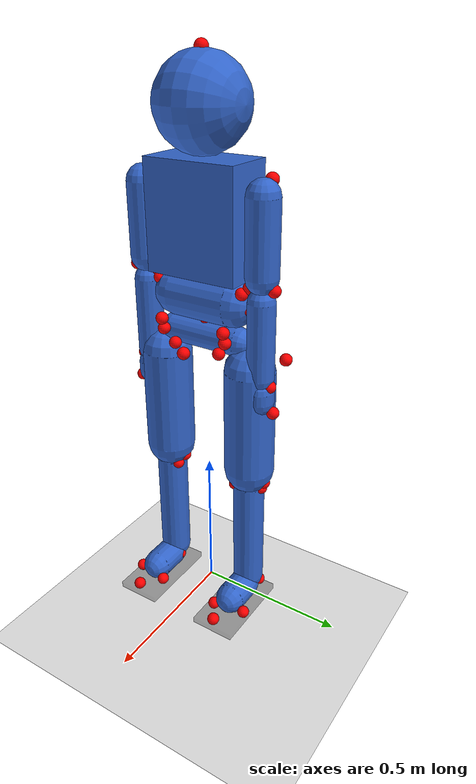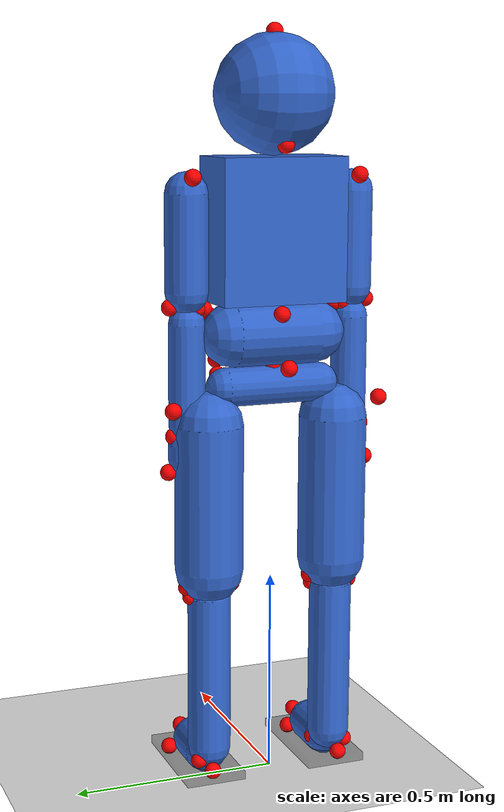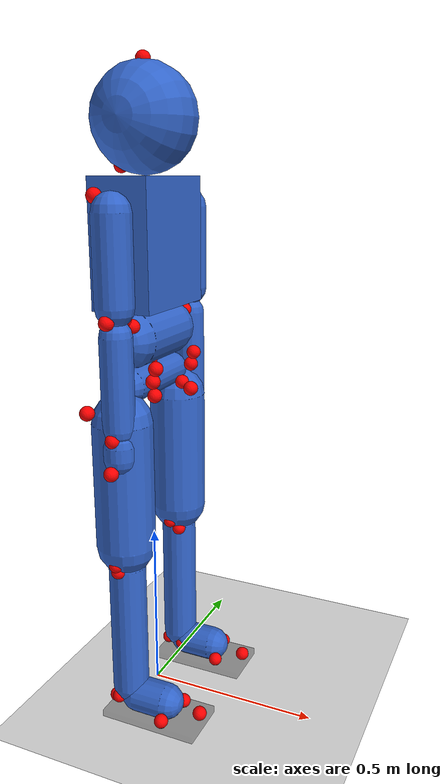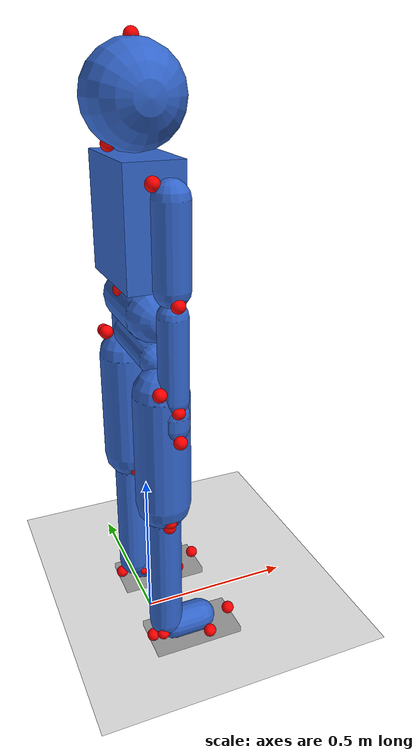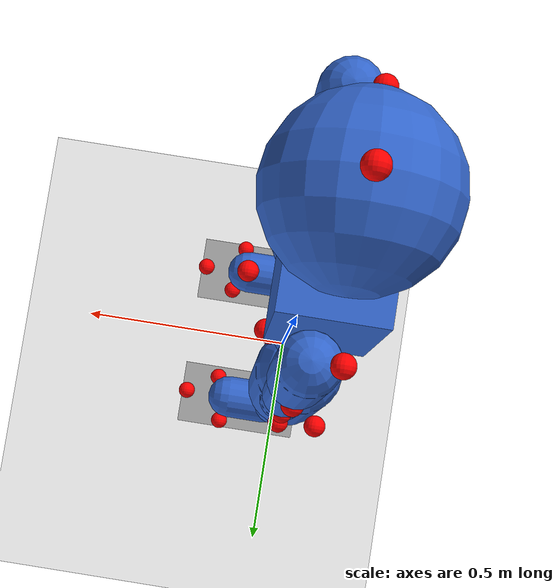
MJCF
<?xml version='1.0' encoding='utf-8'?>
<mujoco model="C:\Users\aleks\Desktop\Aleksie kerefeke\master\RS projekat - RL politika ucenja joystick\mujoco-bipedal-joystick-walker\generated_models\human_male_180cm_75kg_base">
  <compiler angle="degree" inertiafromgeom="false" />
  <visual>
    <map force="0.1" zfar="30" />
    <rgba haze="0.15 0.25 0.35 1" />
    <global offwidth="2560" offheight="1440" elevation="-20" azimuth="120" />
  </visual>
  <contact>
    <exclude body1="thorax" body2="head" />
    <exclude body1="thorax" body2="abdomen" />
    <exclude body1="abdomen" body2="pelvis" />
    <exclude body1="pelvis" body2="left_thigh" />
    <exclude body1="pelvis" body2="right_thigh" />
    <exclude body1="left_thigh" body2="left_shank" />
    <exclude body1="right_thigh" body2="right_shank" />
    <exclude body1="left_shank" body2="left_foot" />
    <exclude body1="right_shank" body2="right_foot" />
    <exclude body1="thorax" body2="left_upper_arm" />
    <exclude body1="thorax" body2="right_upper_arm" />
    <exclude body1="left_upper_arm" body2="left_forearm" />
    <exclude body1="right_upper_arm" body2="right_forearm" />
    <exclude body1="left_forearm" body2="left_hand" />
    <exclude body1="right_forearm" body2="right_hand" />
  </contact>
  <worldbody>
    <light diffuse=".8 .8 .8" pos="0 0 3" dir="0 0 -1" />
    <body name="thorax" pos="0 0 1.5188135593220338" euler="90 0 0">
      <joint type="free" pos="0 0 0" />
      <geom type="box" size="0.08491525423728814 0.16983050847457629 0.15305084745762712" pos="0 -0.16983050847457629 0" euler="0 0 0" rgba="0.2 0.4 0.8 1.0" contype="0" conaffinity="0" />
      <inertial mass="22.8" pos="0.0 -0.1885118644067797 -0.0013586440677966103" fullinertia="0.4640073275127837 0.28645350320942264 0.34090334266245337 -0.031828167023269176 0.00026304270267164614 0.002367384324044815" />
      <body name="head" pos="0 0 0">
        <joint name="head_x" type="hinge" axis="1 0 0" pos="0 0 0" range="-45.0 45.0" damping="2.0" armature="0.003" frictionloss="0.3" stiffness="12.0" springref="0" />
        <joint name="head_y" type="hinge" axis="0 1 0" pos="0 0 0" range="-80 80" damping="2.0" armature="0.003" frictionloss="0.3" stiffness="12.0" springref="0" />
        <joint name="head_z" type="hinge" axis="0 0 1" pos="0 0 0" range="-60 75.0" damping="2.0" armature="0.003" frictionloss="0.3" stiffness="12.0" springref="0" />
        <geom type="sphere" size="0.14135593220338985" pos="0 0.14135593220338985 0" euler="0 0 0" rgba="0.2 0.4 0.8 1.0" contype="0" conaffinity="0" />
        <inertial mass="5.025" pos="0.005654237288135594 0.15096813559322037 0.0002827118644067797" fullinertia="0.03148764628095377 0.01771180103303649 0.036146532720482634 -0.0019679778925596105 -0.0001606512565354784 0.0003614653272048263" />
        <site name="head_vertex" pos="0.0 0.2816949152542373 0.0" size="0.02" rgba="1 0 0 1" />
        <site name="sellion" pos="0.10677966101694915 0.17593220338983048 0.0" size="0.02" rgba="1 0 0 1" />
        <site name="occiput" pos="-0.07423728813559322 0.1016949152542373 0.0" size="0.02" rgba="1 0 0 1" />
        <site name="centre_of_mass_head" pos="-0.006101694915254237 0.15152542372881356 0.0" size="0.02" rgba="1 0 0 1" />
      </body>
      <body name="abdomen" pos="0 -0.33966101694915257 0">
        <joint name="abdomen_x" type="hinge" axis="1 0 0" pos="0 0 0" range="-0.001 0.001" limited="true" damping="80.0" armature="0.05" frictionloss="10.0" stiffness="5000.0" springref="0" />
        <joint name="abdomen_y" type="hinge" axis="0 1 0" pos="0 0 0" range="-0.001 0.001" limited="true" damping="80.0" armature="0.05" frictionloss="10.0" stiffness="5000.0" springref="0" />
        <joint name="abdomen_z" type="hinge" axis="0 0 1" pos="0 0 0" range="-0.001 0.001" limited="true" damping="80.0" armature="0.05" frictionloss="10.0" stiffness="5000.0" springref="0" />
        <geom type="capsule" size="0.07677966101694915 0.10194915254237288" pos="0 -0.07677966101694915 0" euler="0 0 0" rgba="0.2 0.4 0.8 1.0" contype="0" conaffinity="0" />
        <inertial mass="2.175" pos="0.027026440677966102 -0.055434915254237285 -0.005067457627118644" fullinertia="0.014955438560183852 0.022340840318299336 0.00820600195346165 0.000620578897730537 -0.00018463504395288706 -0.00012821878052283827" />
        <body name="pelvis" pos="0 -0.1535593220338983 0">
          <joint name="pelvis_x" type="hinge" axis="1 0 0" pos="0 0 0" range="-0.001 0.001" limited="true" damping="80.0" armature="0.05" frictionloss="10.0" stiffness="5000.0" springref="0" />
          <joint name="pelvis_y" type="hinge" axis="0 1 0" pos="0 0 0" range="-0.001 0.001" limited="true" damping="80.0" armature="0.05" frictionloss="10.0" stiffness="5000.0" springref="0" />
          <joint name="pelvis_z" type="hinge" axis="0 0 1" pos="0 0 0" range="-0.001 0.001" limited="true" damping="80.0" armature="0.05" frictionloss="10.0" stiffness="5000.0" springref="0" />
          <geom type="capsule" size="0.047288135593220336 0.11923728813559321" pos="0 -0.047288135593220336 0" euler="0 0 0" rgba="0.2 0.4 0.8 1.0" contype="0" conaffinity="0" />
          <inertial mass="10.649999999999999" pos="-0.00018915254237288136 -0.026670508474576266 -0.0005674576271186441" fullinertia="0.09910928108704392 0.10703497523010629 0.08779230435392127 -0.005953796681987933 -0.0013717547555300198 -0.0006096687802355644" />
          <body name="left_thigh" pos="0 -0.0945763 -0.161012">
            <joint name="left_hip_x" type="hinge" axis="1 0 0" pos="0 0 0" range="-20.0 40.0" damping="4.0" armature="0.01" frictionloss="0.3" />
            <joint name="left_hip_y" type="hinge" axis="0 1 0" pos="0 0 0" range="-40 50" damping="4.0" armature="0.01" frictionloss="0.3" />
            <joint name="left_hip_z" type="hinge" axis="0 0 1" pos="0 0 0" range="-30 100.0" damping="4.0" armature="0.01" frictionloss="0.3" />
            <geom type="capsule" size="0.08288135593220339 0.17822033898305084" pos="0 -0.21966101694915252 0" euler="-90 0 0" rgba="0.2 0.4 0.8 1.0" contype="0" conaffinity="0" />
            <inertial mass="9.225000000000001" pos="-0.018012203389830506 -0.18846915254237287 -0.014497627118644068" fullinertia="0.1497367290043091 0.040060361505314564 0.16024144602125825 0.00872425650560184 0.0007121842045389257 0.00872425650560184" />
            <body name="left_shank" pos="0 -0.43932203389830504 0">
              <joint name="left_knee_z" type="hinge" axis="0 0 1" pos="0 0 0" range="-150 0.0" damping="5.0" armature="0.01" frictionloss="0.8" />
              <geom type="capsule" size="0.052372881355932197 0.19398305084745762" pos="0 -0.22016949152542373 0" euler="-90 0 0" rgba="0.2 0.4 0.8 1.0" contype="0" conaffinity="0" />
              <inertial mass="3.6" pos="-0.021136271186440677 -0.18053898305084745 -0.0030823728813559317" fullinertia="0.054725890059178404 0.006980343119793164 0.054725890059178404 -0.001116854899166906 0.0002792137247917265 -0.001116854899166906" />
              <body name="left_foot" pos="0 -0.44033898305084745 0">
                <joint name="left_ankle_y" type="hinge" axis="0 1 0" pos="0 0 0" range="-30 30" damping="8.0" armature="0.01" frictionloss="1.0" />
                <joint name="left_ankle_z" type="hinge" axis="0 0 1" pos="0 0 0" range="-20 30.0" damping="8.0" armature="0.01" frictionloss="1.0" />
                <geom type="capsule" size="0.05135593220338983 0.04500000000000001" pos="0.07067796610169493 0 0" euler="0 90 0" rgba="0.2 0.4 0.8 1.0" solref="0.02 1" solimp="0.85 0.95 0.005" contype="0" conaffinity="0" condim="3" />
                <inertial mass="0.9" pos="0.0709606779661017 -0.028129830508474576 -0.004806101694915256" fullinertia="0.000870394121229532 0.004317802241884517 0.004143363750646367 0.000519718803792014 0.000217598530307383 -0.0" />
                <site name="calcaneous_left" pos="-0.04677966101694915 -0.02135593220338983 -0.00711864406779661" size="0.02" rgba="1 0 0 1" />
                <site name="first_metatarsal_head_left" pos="0.14847457627118643 -0.02135593220338983 0.04779661016949152" size="0.02" rgba="1 0 0 1" />
                <site name="fifth_metatarsal_head_left" pos="0.13016949152542373 -0.02135593220338983 -0.06101694915254237" size="0.02" rgba="1 0 0 1" />
                <site name="second_toe_tip_left" pos="0.22271186440677965 -0.009152542372881356 0.001016949152542373" size="0.02" rgba="1 0 0 1" />
                <site name="centre_of_mass_foot_left" pos="0.04576271186440677 -0.03661016949152542 -0.006101694915254237" size="0.02" rgba="1 0 0 1" />
                <site name="metatarsal_midpoint_left" pos="0.10576271186440676 0.0 0.0" size="0.02" rgba="1 0 0 1" />
                <geom name="left_foot_sole" type="box" pos="0.09 -0.045 0" size="0.145 0.012 0.075" rgba="0.1 0.1 0.1 0.35" friction="1.0 0.01 0.001" solref="0.02 1" solimp="0.85 0.95 0.005" contype="1" conaffinity="1" condim="3" />
              </body>
              <site name="tibiale_head_left" pos="0.02135593220338983 -0.027457627118644065 0.04271186440677966" size="0.02" rgba="1 0 0 1" />
              <site name="fibula_head_left" pos="0.0 -0.023389830508474575 -0.04779661016949152" size="0.02" rgba="1 0 0 1" />
              <site name="sphyrion_left" pos="0.02135593220338983 -0.4413559322033898 0.0335593220338983" size="0.02" rgba="1 0 0 1" />
              <site name="lateral_malleolus_left" pos="-0.02135593220338983 -0.44033898305084745 -0.0335593220338983" size="0.02" rgba="1 0 0 1" />
              <site name="centre_of_mass_shank_left" pos="-0.02135593220338983 -0.18101694915254235 -0.0030508474576271187" size="0.02" rgba="1 0 0 1" />
            </body>
            <site name="greater_trochanter_left" pos="-0.04067796610169491 0.006101694915254237 -0.10271186440677967" size="0.02" rgba="1 0 0 1" />
            <site name="lateral_femoral_epicondyle_left" pos="0.0 -0.4383050847457627 -0.057966101694915256" size="0.02" rgba="1 0 0 1" />
            <site name="medial_femoral_epicondyle_left" pos="0.0 -0.43932203389830504 0.057966101694915256" size="0.02" rgba="1 0 0 1" />
            <site name="centre_of_mass_thigh_left" pos="-0.01830508474576271 -0.18813559322033896 -0.01423728813559322" size="0.02" rgba="1 0 0 1" />
          </body>
          <body name="right_thigh" pos="0 -0.0945763 0.161012">
            <joint name="right_hip_x" type="hinge" axis="1 0 0" pos="0 0 0" range="-40.0 20.0" damping="4.0" armature="0.01" frictionloss="0.3" />
            <joint name="right_hip_y" type="hinge" axis="0 1 0" pos="0 0 0" range="-40 50" damping="4.0" armature="0.01" frictionloss="0.3" />
            <joint name="right_hip_z" type="hinge" axis="0 0 1" pos="0 0 0" range="-30 100.0" damping="4.0" armature="0.01" frictionloss="0.3" />
            <geom type="capsule" size="0.08288135593220339 0.17822033898305084" pos="0 -0.21966101694915252 0" euler="-90 0 0" rgba="0.2 0.4 0.8 1.0" contype="0" conaffinity="0" />
            <inertial mass="9.225000000000001" pos="-0.018012203389830506 -0.18846915254237287 0.014497627118644068" fullinertia="0.1497367290043091 0.040060361505314564 0.16024144602125825 0.00872425650560184 -0.0007121842045389257 -0.00872425650560184" />
            <body name="right_shank" pos="0 -0.43932203389830504 0">
              <joint name="right_knee_z" type="hinge" axis="0 0 1" pos="0 0 0" range="-150 0.0" damping="5.0" armature="0.01" frictionloss="0.8" />
              <geom type="capsule" size="0.052372881355932197 0.19398305084745762" pos="0 -0.22016949152542373 0" euler="-90 0 0" rgba="0.2 0.4 0.8 1.0" contype="0" conaffinity="0" />
              <inertial mass="3.6" pos="-0.021136271186440677 -0.18053898305084745 0.0030823728813559317" fullinertia="0.054725890059178404 0.006980343119793164 0.054725890059178404 -0.001116854899166906 -0.0002792137247917265 0.001116854899166906" />
              <body name="right_foot" pos="0 -0.44033898305084745 0">
                <joint name="right_ankle_y" type="hinge" axis="0 1 0" pos="0 0 0" range="-30 30" damping="8.0" armature="0.01" frictionloss="1.0" />
                <joint name="right_ankle_z" type="hinge" axis="0 0 1" pos="0 0 0" range="-20 30.0" damping="8.0" armature="0.01" frictionloss="1.0" />
                <geom type="capsule" size="0.05135593220338983 0.04500000000000001" pos="0.07067796610169493 0 0" euler="0 90 0" rgba="0.2 0.4 0.8 1.0" solref="0.02 1" solimp="0.85 0.95 0.005" contype="0" conaffinity="0" condim="3" />
                <inertial mass="0.9" pos="0.0709606779661017 -0.028129830508474576 0.004806101694915256" fullinertia="0.000870394121229532 0.004317802241884517 0.004143363750646367 0.000519718803792014 -0.000217598530307383 0.0" />
                <site name="calcaneous_right" pos="-0.04677966101694915 -0.02135593220338983 0.00711864406779661" size="0.02" rgba="1 0 0 1" />
                <site name="first_metatarsal_head_right" pos="0.14847457627118643 -0.02135593220338983 -0.04779661016949152" size="0.02" rgba="1 0 0 1" />
                <site name="fifth_metatarsal_head_right" pos="0.13016949152542373 -0.02135593220338983 0.06101694915254237" size="0.02" rgba="1 0 0 1" />
                <site name="second_toe_tip_right" pos="0.22271186440677965 -0.009152542372881356 -0.001016949152542373" size="0.02" rgba="1 0 0 1" />
                <site name="centre_of_mass_foot_right" pos="0.04576271186440677 -0.03661016949152542 0.006101694915254237" size="0.02" rgba="1 0 0 1" />
                <site name="metatarsal_midpoint_right" pos="0.10576271186440676 0.0 0.0" size="0.02" rgba="1 0 0 1" />
                <geom name="right_foot_sole" type="box" pos="0.09 -0.045 0" size="0.145 0.012 0.075" rgba="0.1 0.1 0.1 0.35" friction="1.0 0.01 0.001" solref="0.02 1" solimp="0.85 0.95 0.005" contype="1" conaffinity="1" condim="3" />
              </body>
              <site name="tibiale_head_right" pos="0.02135593220338983 -0.027457627118644065 -0.04271186440677966" size="0.02" rgba="1 0 0 1" />
              <site name="fibula_head_right" pos="0.0 -0.023389830508474575 0.04779661016949152" size="0.02" rgba="1 0 0 1" />
              <site name="sphyrion_right" pos="0.02135593220338983 -0.4413559322033898 -0.0335593220338983" size="0.02" rgba="1 0 0 1" />
              <site name="lateral_malleolus_right" pos="-0.02135593220338983 -0.44033898305084745 0.0335593220338983" size="0.02" rgba="1 0 0 1" />
              <site name="centre_of_mass_shank_right" pos="-0.02135593220338983 -0.18101694915254235 0.0030508474576271187" size="0.02" rgba="1 0 0 1" />
            </body>
            <site name="greater_trochanter_right" pos="-0.04067796610169491 0.006101694915254237 0.10271186440677967" size="0.02" rgba="1 0 0 1" />
            <site name="lateral_femoral_epicondyle_right" pos="0.0 -0.4383050847457627 0.057966101694915256" size="0.02" rgba="1 0 0 1" />
            <site name="medial_femoral_epicondyle_right" pos="0.0 -0.43932203389830504 -0.057966101694915256" size="0.02" rgba="1 0 0 1" />
            <site name="centre_of_mass_thigh_right" pos="-0.01830508474576271 -0.18813559322033896 0.01423728813559322" size="0.02" rgba="1 0 0 1" />
          </body>
          <site name="midpoint_between_postero_superior_iliac_spines" pos="-0.10372881355932202 0.00711864406779661 0.0" size="0.02" rgba="1 0 0 1" />
          <site name="antero_superior_iliac_spine_right" pos="0.07932203389830508 0.00711864406779661 0.11389830508474576" size="0.02" rgba="1 0 0 1" />
          <site name="antero_superior_iliac_spine_left" pos="0.07932203389830508 0.00711864406779661 -0.11389830508474576" size="0.02" rgba="1 0 0 1" />
          <site name="symphision" pos="0.12508474576271186 -0.06813559322033898 0.0" size="0.02" rgba="1 0 0 1" />
          <site name="hip_joint_centre_right" pos="0.05694915254237288 -0.07627118644067796 0.0823728813559322" size="0.02" rgba="1 0 0 1" />
          <site name="hip_joint_centre_left" pos="0.05694915254237288 -0.07627118644067796 -0.0823728813559322" size="0.02" rgba="1 0 0 1" />
          <site name="centre_of_mass_pelvis" pos="-0.0030508474576271187 -0.02644067796610169 0.0" size="0.02" rgba="1 0 0 1" />
        </body>
        <site name="midspine_at_tenth_rib_level" pos="-0.05898305084745763 -0.025423728813559324 0.0" size="0.02" rgba="1 0 0 1" />
        <site name="tenth_rib_right" pos="0.0335593220338983 -0.031525423728813555 0.1494915254237288" size="0.02" rgba="1 0 0 1" />
        <site name="tenth_rib_left" pos="0.0335593220338983 -0.031525423728813555 -0.1494915254237288" size="0.02" rgba="1 0 0 1" />
        <site name="iliocristale_right" pos="0.020338983050847456 -0.08135593220338982 0.15966101694915252" size="0.02" rgba="1 0 0 1" />
        <site name="iliocristale_left" pos="0.020338983050847456 -0.08135593220338982 -0.15966101694915252" size="0.02" rgba="1 0 0 1" />
        <site name="anterior_superior_iliac_spine_right" pos="0.07016949152542373 -0.18203389830508473 0.11389830508474576" size="0.02" rgba="1 0 0 1" />
        <site name="anterior_superior_iliac_spine_left" pos="0.07016949152542373 -0.18203389830508473 -0.11389830508474576" size="0.02" rgba="1 0 0 1" />
        <site name="lumbar_joint_centre" pos="0.0 -0.1535593220338983 0.0" size="0.02" rgba="1 0 0 1" />
        <site name="centre_of_mass_abdomen" pos="0.02644067796610169 -0.05593220338983051 0.0" size="0.02" rgba="1 0 0 1" />
      </body>
      <body name="left_upper_arm" pos="0.019322033898305082 -0.08440677966101695 -0.20949152542372879">
        <joint name="left_shoulder_x" type="hinge" axis="1 0 0" pos="0 0 0" range="-50.0 180.0" damping="3.0" armature="0.006" frictionloss="0.8" stiffness="25.0" springref="0" />
        <joint name="left_shoulder_y" type="hinge" axis="0 1 0" pos="0 0 0" range="-90 90" damping="3.0" armature="0.006" frictionloss="0.8" stiffness="25.0" springref="0" />
        <joint name="left_shoulder_z" type="hinge" axis="0 0 1" pos="0 0 0" range="-50 180.0" damping="3.0" armature="0.006" frictionloss="0.8" stiffness="25.0" springref="0" />
        <geom type="capsule" size="0.05135593220338983 0.11516949152542373" pos="0 -0.11516949152542373 0" euler="-90 0 0" rgba="0.2 0.4 0.8 1.0" contype="0" conaffinity="0" />
        <inertial mass="1.8" pos="0.005070508474576272 -0.13577694915254238 0.008732542372881355" fullinertia="0.012012309586900315 0.0024138886090203965 0.012855028095374891 0.00035708411376041377 -0.0001285502809537489 0.0024138886090203965" />
        <body name="left_forearm" pos="0 -0.2816949152542373 0">
          <joint name="left_elbow_z" type="hinge" axis="0 0 1" pos="0 0 0" range="0 150.0" damping="2.0" armature="0.006" frictionloss="0.5" stiffness="12.0" springref="0" />
          <geom type="capsule" size="0.04372881355932203 0.12203389830508472" pos="0 -0.14389830508474574 0" euler="-90 0 0" rgba="0.2 0.4 0.8 1.0" contype="0" conaffinity="0" />
          <inertial mass="1.2750000000000001" pos="-0.0037413559322033896 -0.12001118644067796 -0.0031657627118644067" fullinertia="0.008279375806952026 0.001277811827348463 0.008279375806952026 0.0006758674128124101 1.0560428325193909e-05 -4.2241713300775634e-05" />
          <body name="left_hand" pos="0 -0.2877966101694915 0">
            <joint name="left_wrist_y" type="hinge" axis="0 1 0" pos="0 0 0" range="-80 80" damping="2.0" armature="0.003" frictionloss="0.3" stiffness="6.0" springref="0" />
            <joint name="left_wrist_z" type="hinge" axis="0 0 1" pos="0 0 0" range="-60 60.0" damping="2.0" armature="0.003" frictionloss="0.3" stiffness="6.0" springref="0" />
            <geom type="capsule" size="0.04525423728813559 0.01805084745762712" pos="0 -0.04067796610169491 0" euler="-90 0 0" rgba="0.2 0.4 0.8 1.0" contype="0" conaffinity="0" />
            <inertial mass="0.45" pos="0.0066711864406779646 -0.06825762711864407 -0.0061016949152542365" fullinertia="0.0011082829072105714 0.00043008882505027286 0.0009340433208848032 0.00014415719620798617 -6.701522550991094e-05 0.00011913817868428613" />
            <site name="secnd_metacarpal_head_left" pos="0.0 -0.08745762711864406 -0.04677966101694915" size="0.02" rgba="1 0 0 1" />
            <site name="fifth_metacarpal_head_left" pos="0.0 -0.07627118644067796 0.04677966101694915" size="0.02" rgba="1 0 0 1" />
            <site name="third_finger_tip_left" pos="0.00711864406779661 -0.19220338983050847 0.001016949152542373" size="0.02" rgba="1 0 0 1" />
            <site name="centre_of_mass_left" pos="0.00711864406779661 -0.06915254237288136 -0.006101694915254237" size="0.02" rgba="1 0 0 1" />
          </body>
          <site name="olecranion_left" pos="-0.008135593220338983 0.01423728813559322 0.0223728813559322" size="0.02" rgba="1 0 0 1" />
          <site name="ulnar_styloid_left" pos="0.0 -0.28881355932203384 0.0335593220338983" size="0.02" rgba="1 0 0 1" />
          <site name="radial_styloid_left" pos="0.0 -0.28881355932203384 -0.0335593220338983" size="0.02" rgba="1 0 0 1" />
          <site name="centre_of_mass_forearm_left" pos="0.0030508474576271187 -0.11999999999999998 -0.004067796610169492" size="0.02" rgba="1 0 0 1" />
        </body>
        <site name="lateral_humeral_epicondyle_left" pos="0.0 -0.2623728813559322 -0.04169491525423729" size="0.02" rgba="1 0 0 1" />
        <site name="medial_humeral_epicondyle_left" pos="0.0 -0.2684745762711864 0.04169491525423729" size="0.02" rgba="1 0 0 1" />
        <site name="centre_of_mass_upper_arm_left" pos="0.005084745762711864 -0.11999999999999998 -0.00711864406779661" size="0.02" rgba="1 0 0 1" />
      </body>
      <body name="right_upper_arm" pos="0.019322033898305082 -0.08440677966101695 0.20949152542372879">
        <joint name="right_shoulder_x" type="hinge" axis="1 0 0" pos="0 0 0" range="-180.0 50.0" damping="3.0" armature="0.006" frictionloss="0.8" stiffness="25.0" springref="0" />
        <joint name="right_shoulder_y" type="hinge" axis="0 1 0" pos="0 0 0" range="-90 90" damping="3.0" armature="0.006" frictionloss="0.8" stiffness="25.0" springref="0" />
        <joint name="right_shoulder_z" type="hinge" axis="0 0 1" pos="0 0 0" range="-50 180.0" damping="3.0" armature="0.006" frictionloss="0.8" stiffness="25.0" springref="0" />
        <geom type="capsule" size="0.05135593220338983 0.11516949152542373" pos="0 -0.11516949152542373 0" euler="-90 0 0" rgba="0.2 0.4 0.8 1.0" contype="0" conaffinity="0" />
        <inertial mass="1.8" pos="0.005070508474576272 -0.13577694915254238 -0.008732542372881355" fullinertia="0.012012309586900315 0.0024138886090203965 0.012855028095374891 0.00035708411376041377 0.0001285502809537489 -0.0024138886090203965" />
        <body name="right_forearm" pos="0 -0.2816949152542373 0">
          <joint name="right_elbow_z" type="hinge" axis="0 0 1" pos="0 0 0" range="0 150.0" damping="2.0" armature="0.006" frictionloss="0.5" stiffness="12.0" springref="0" />
          <geom type="capsule" size="0.04372881355932203 0.12203389830508472" pos="0 -0.14389830508474574 0" euler="-90 0 0" rgba="0.2 0.4 0.8 1.0" contype="0" conaffinity="0" />
          <inertial mass="1.2750000000000001" pos="-0.0037413559322033896 -0.12001118644067796 0.0031657627118644067" fullinertia="0.008279375806952026 0.001277811827348463 0.008279375806952026 0.0006758674128124101 -1.0560428325193909e-05 4.2241713300775634e-05" />
          <body name="right_hand" pos="0 -0.2877966101694915 0">
            <joint name="right_wrist_y" type="hinge" axis="0 1 0" pos="0 0 0" range="-80 80" damping="2.0" armature="0.003" frictionloss="0.3" stiffness="6.0" springref="0" />
            <joint name="right_wrist_z" type="hinge" axis="0 0 1" pos="0 0 0" range="-60 60.0" damping="2.0" armature="0.003" frictionloss="0.3" stiffness="6.0" springref="0" />
            <geom type="capsule" size="0.04525423728813559 0.01805084745762712" pos="0 -0.04067796610169491 0" euler="-90 0 0" rgba="0.2 0.4 0.8 1.0" contype="0" conaffinity="0" />
            <inertial mass="0.45" pos="0.0066711864406779646 -0.06825762711864407 0.0061016949152542365" fullinertia="0.0011082829072105714 0.00043008882505027286 0.0009340433208848032 0.00014415719620798617 6.701522550991094e-05 -0.00011913817868428613" />
            <site name="secnd_metacarpal_head_right" pos="0.0 -0.08745762711864406 0.04677966101694915" size="0.02" rgba="1 0 0 1" />
            <site name="fifth_metacarpal_head_right" pos="0.0 -0.07627118644067796 -0.04677966101694915" size="0.02" rgba="1 0 0 1" />
            <site name="third_finger_tip_right" pos="0.00711864406779661 -0.19220338983050847 -0.001016949152542373" size="0.02" rgba="1 0 0 1" />
            <site name="centre_of_mass_right" pos="0.00711864406779661 -0.06915254237288136 0.006101694915254237" size="0.02" rgba="1 0 0 1" />
          </body>
          <site name="olecranion_right" pos="-0.008135593220338983 0.01423728813559322 -0.0223728813559322" size="0.02" rgba="1 0 0 1" />
          <site name="ulnar_styloid_right" pos="0.0 -0.28881355932203384 -0.0335593220338983" size="0.02" rgba="1 0 0 1" />
          <site name="radial_styloid_right" pos="0.0 -0.28881355932203384 0.0335593220338983" size="0.02" rgba="1 0 0 1" />
          <site name="centre_of_mass_forearm_right" pos="0.0030508474576271187 -0.11999999999999998 0.004067796610169492" size="0.02" rgba="1 0 0 1" />
        </body>
        <site name="lateral_humeral_epicondyle_right" pos="0.0 -0.2623728813559322 0.04169491525423729" size="0.02" rgba="1 0 0 1" />
        <site name="medial_humeral_epicondyle_right" pos="0.0 -0.2684745762711864 -0.04169491525423729" size="0.02" rgba="1 0 0 1" />
        <site name="centre_of_mass_upper_arm_right" pos="0.005084745762711864 -0.11999999999999998 0.00711864406779661" size="0.02" rgba="1 0 0 1" />
      </body>
      <site name="seventh_cervicale" pos="-0.07322033898305084 0.02644067796610169 0.0" size="0.02" rgba="1 0 0 1" />
      <site name="suprasternale" pos="0.05186440677966101 -0.03966101694915254 0.0" size="0.02" rgba="1 0 0 1" />
      <site name="acromion_right" pos="-0.027457627118644065 -0.04576271186440677 0.20949152542372879" size="0.02" rgba="1 0 0 1" />
      <site name="acromion_left" pos="-0.027457627118644065 -0.04576271186440677 -0.20949152542372879" size="0.02" rgba="1 0 0 1" />
      <site name="shoulder_joint_centre_right" pos="0.019322033898305082 -0.08440677966101695 0.20949152542372879" size="0.02" rgba="1 0 0 1" />
      <site name="shoulder_joint_centre_left" pos="0.019322033898305082 -0.08440677966101695 -0.20949152542372879" size="0.02" rgba="1 0 0 1" />
      <site name="thoracic_joint_centre" pos="0.0 -0.33966101694915257 0.0" size="0.02" rgba="1 0 0 1" />
      <site name="centre_of_mass_thorax" pos="0.0 -0.18813559322033896 0.001016949152542373" size="0.02" rgba="1 0 0 1" />
    </body>
    <geom name="floor" type="plane" size="0 0 0.01" material="groundplane" friction="0.8" condim="3" contype="1" conaffinity="0" />
  </worldbody>
  <option gravity="0 0 -9.81" timestep="0.01" integrator="implicitfast" iterations="4" ls_iterations="5" />
  <keyframe>
    <key name="t-pose" qpos="0 0 1.5188135593220338 0.7071 0.7071 0 0 0 0 0 0 0 0 0 0 0 0 0 0 0 0 0 0 0 0 0 0 0 1.57079632679 0 0 0 0 0 -1.57079632679 0 0 0 0 0" ctrl="0 0 0 0 0 0 0 0 0 0 0 0" />
    <key name="a-pose" qpos="0 0 1.5188135593220338 0.7071 0.7071 0 0 0 0 0 0 0 0 0 0 0 0 0 0 0 0 0 0 0 0 0 0 0 0.75 0 0 0 0 0 -0.75 0 0 0 0 0" ctrl="0 0 0 0 0 0 0 0 0 0 0 0" />
  </keyframe>
  <statistic center="0 0 0.9" extent="2.2" />
  <asset>
    <texture type="2d" name="groundplane" builtin="checker" width="300" height="300" rgb1="1 1 1" rgb2=".85 .85 .85" />
    <material name="groundplane" texture="groundplane" texrepeat="6 6" texuniform="true" />
  </asset>
  <equality>
    <joint name="lock_abdomen_x" joint1="abdomen_x" polycoef="0 1 0 0 0" solref="0.002 1" solimp="0.999 0.9999 0.0001" />
    <joint name="lock_abdomen_y" joint1="abdomen_y" polycoef="0 1 0 0 0" solref="0.002 1" solimp="0.999 0.9999 0.0001" />
    <joint name="lock_abdomen_z" joint1="abdomen_z" polycoef="0 1 0 0 0" solref="0.002 1" solimp="0.999 0.9999 0.0001" />
    <joint name="lock_pelvis_x" joint1="pelvis_x" polycoef="0 1 0 0 0" solref="0.002 1" solimp="0.999 0.9999 0.0001" />
    <joint name="lock_pelvis_y" joint1="pelvis_y" polycoef="0 1 0 0 0" solref="0.002 1" solimp="0.999 0.9999 0.0001" />
    <joint name="lock_pelvis_z" joint1="pelvis_z" polycoef="0 1 0 0 0" solref="0.002 1" solimp="0.999 0.9999 0.0001" />
  </equality>
  <actuator>
    <position name="left_hip_x_position" joint="left_hip_x" kp="100" ctrllimited="true" ctrlrange="-0.349066 0.698132" forcelimited="true" forcerange="-180 180" />
    <position name="left_hip_y_position" joint="left_hip_y" kp="100" ctrllimited="true" ctrlrange="-0.698132 0.872665" forcelimited="true" forcerange="-180 180" />
    <position name="left_hip_z_position" joint="left_hip_z" kp="100" ctrllimited="true" ctrlrange="-0.523599 1.745329" forcelimited="true" forcerange="-180 180" />
    <position name="left_knee_z_position" joint="left_knee_z" kp="120" ctrllimited="true" ctrlrange="-2.617994 0.000000" forcelimited="true" forcerange="-180 180" />
    <position name="left_ankle_y_position" joint="left_ankle_y" kp="90" ctrllimited="true" ctrlrange="-0.523599 0.523599" forcelimited="true" forcerange="-160 160" />
    <position name="left_ankle_z_position" joint="left_ankle_z" kp="90" ctrllimited="true" ctrlrange="-0.349066 0.523599" forcelimited="true" forcerange="-160 160" />
    <position name="right_hip_x_position" joint="right_hip_x" kp="100" ctrllimited="true" ctrlrange="-0.698132 0.349066" forcelimited="true" forcerange="-180 180" />
    <position name="right_hip_y_position" joint="right_hip_y" kp="100" ctrllimited="true" ctrlrange="-0.698132 0.872665" forcelimited="true" forcerange="-180 180" />
    <position name="right_hip_z_position" joint="right_hip_z" kp="100" ctrllimited="true" ctrlrange="-0.523599 1.745329" forcelimited="true" forcerange="-180 180" />
    <position name="right_knee_z_position" joint="right_knee_z" kp="120" ctrllimited="true" ctrlrange="-2.617994 0.000000" forcelimited="true" forcerange="-180 180" />
    <position name="right_ankle_y_position" joint="right_ankle_y" kp="90" ctrllimited="true" ctrlrange="-0.523599 0.523599" forcelimited="true" forcerange="-160 160" />
    <position name="right_ankle_z_position" joint="right_ankle_z" kp="90" ctrllimited="true" ctrlrange="-0.349066 0.523599" forcelimited="true" forcerange="-160 160" />
  </actuator>
</mujoco>
